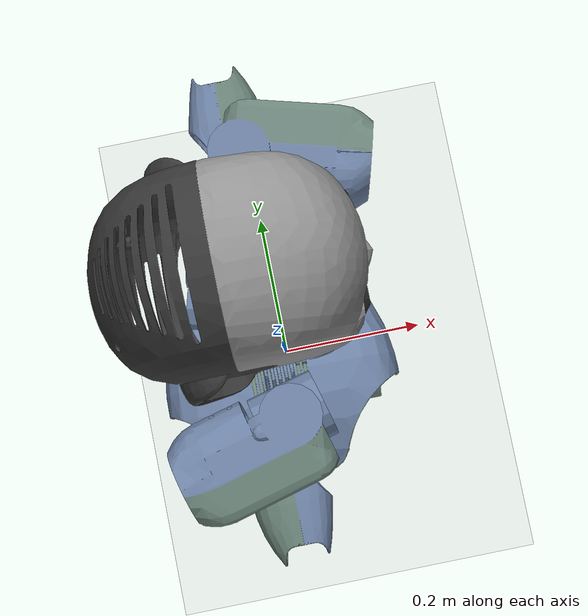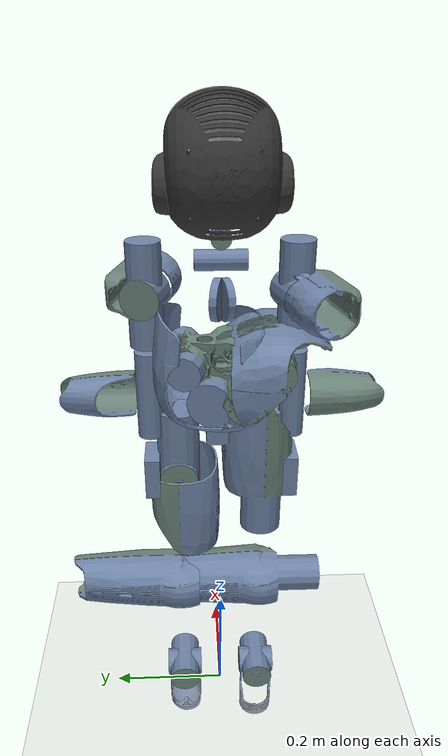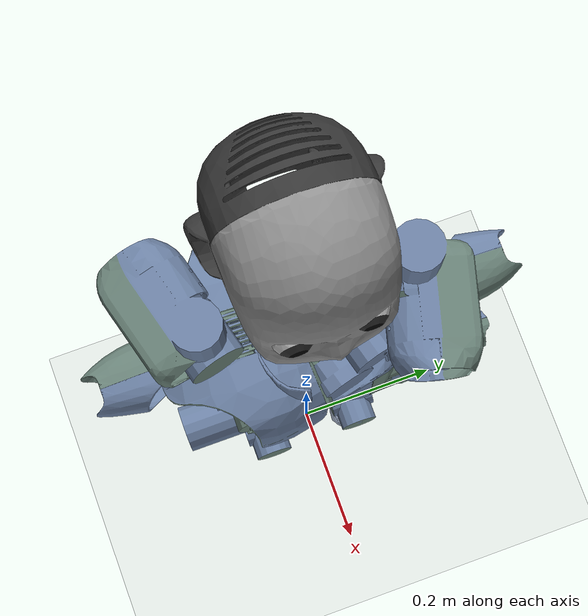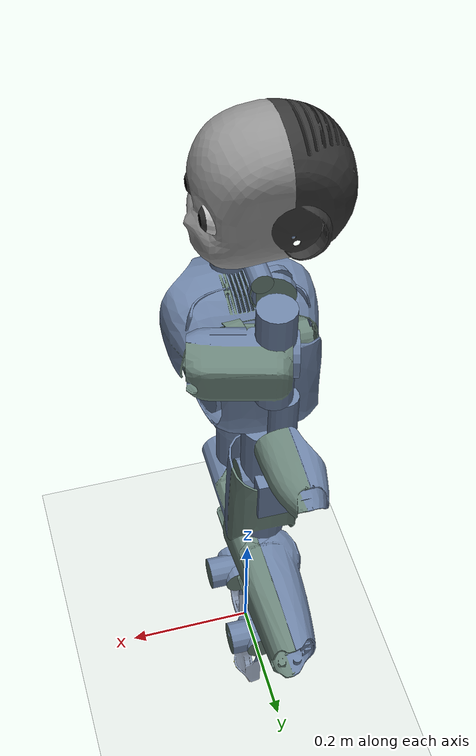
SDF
<?xml version="1.0" ?>
<!--
    Copyright (c) 2019 Horizon Robotics. All Rights Reserved.                            -->
<sdf version="1.5">
  <world name="default">
    <physics type="ode">
      <max_step_size>0.001</max_step_size>
      <real_time_factor>1</real_time_factor>
      <real_time_update_rate>0</real_time_update_rate>
    </physics>
    <!-- Ground -->
    <include>
      <uri>model://texture_ground_plane</uri>
    </include>
    <!-- A global light source -->
    <include>
      <uri>model://sun</uri>
    </include>
    <!-- Agent -->
    <model name='icub'>
      <include>
        <uri>model://icub</uri>
      </include>
    </model>
  </world>
</sdf>

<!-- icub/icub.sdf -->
<sdf version='1.5'>
  <model name='iCub'>
    <pose>0 0 0.6 0 0 3.14</pose>
    <link name='root_link'>
      <pose>0 0 0 0 -0 0</pose>
      <inertial>
        <pose>0 0 0 0 -0 0</pose>
        <mass>1.0</mass>
        <inertia>
          <ixx>0.01</ixx>
          <ixy>0</ixy>
          <ixz>0</ixz>
          <iyy>0.01</iyy>
          <iyz>0</iyz>
          <izz>0.01</izz>
        </inertia>
      </inertial>
      <collision name='root_link_collision'>
        <pose>0 0 0 0 -0 0</pose>
        <geometry>
          <mesh>
            <scale>1 1 1</scale>
            <uri>model://icub/meshes/collision/icub_simple_collision_root_link.dae</uri>
          </mesh>
        </geometry>
      </collision>
      <visual name='root_link_visual'>
        <pose>0 0 0 0 -0 0</pose>
        <geometry>
          <mesh>
            <scale>1 1 1</scale>
            <uri>model://icub/meshes/visual/icub_root_link.dae</uri>
          </mesh>
        </geometry>
      </visual>
    </link>

    <link name='torso_1'>
      <pose>0 0 0 3.14159 -1.57079 -2.65359e-06</pose>
      <inertial>
        <pose>0 0 0 0 -0 0</pose>
        <mass>0.1</mass>
        <inertia>
          <ixx>0.01</ixx>
          <ixy>-4.263e-05</ixy>
          <ixz>-3.889e-08</ixz>
          <iyy>0.01</iyy>
          <iyz>0</iyz>
          <izz>0.01</izz>
        </inertia>
      </inertial>
      <collision name='torso_1_collision'>
        <pose>0 0 0 -1.5708 5.10314e-12 1.11022e-16</pose>
        <geometry>
          <mesh>
            <scale>1 1 1</scale>
            <uri>model://icub/meshes/collision/icub_simple_collision_lap_belt_1.dae</uri>
          </mesh>
        </geometry>
      </collision>
      <visual name='torso_1_visual'>
        <pose>0 0 0 -1.5708 5.10314e-12 1.11022e-16</pose>
        <geometry>
          <mesh>
            <scale>1 1 1</scale>
            <uri>model://icub/meshes/visual/icub_lap_belt_1.dae</uri>
          </mesh>
        </geometry>
      </visual>
    </link>
    <joint name='torso_pitch' type='revolute'>
      <child>torso_1</child>
      <parent>root_link</parent>
      <axis>
        <xyz>-2.65359e-06 -1 -1.05879e-22</xyz>
        <limit>
          <lower>-0.383972</lower>
          <upper>1.46608</upper>
          <effort>320</effort>
          <velocity>100</velocity>
        </limit>
        <dynamics>
          <damping>1</damping>
          <friction>0</friction>
          <spring_reference>0</spring_reference>
          <spring_stiffness>0</spring_stiffness>
        </dynamics>
        <use_parent_model_frame>1</use_parent_model_frame>
      </axis>
    </joint>
    <link name='torso_2'>
      <pose>1.17543e-07 -3.1191e-13 0.032 -3.14159 3.67321e-06 1.57079</pose>
      <inertial>
        <pose>0 0 0 0 -0 0</pose>
        <mass>0.1</mass>
        <inertia>
          <ixx>0.01</ixx>
          <ixy>-1.923e-06</ixy>
          <ixz>5.095e-05</ixz>
          <iyy>0.01</iyy>
          <iyz>-3.849e-07</iyz>
          <izz>0.01</izz>
        </inertia>
      </inertial>
    </link>
    <joint name='torso_roll' type='revolute'>
      <child>torso_2</child>
      <parent>torso_1</parent>
      <axis>
        <xyz>1 -2.6536e-06 -7.34641e-06</xyz>
        <limit>
          <lower>-0.680678</lower>
          <upper>0.680678</upper>
          <effort>160</effort>
          <velocity>100</velocity>
        </limit>
        <dynamics>
          <damping>1</damping>
          <friction>0</friction>
          <spring_reference>0</spring_reference>
          <spring_stiffness>0</spring_stiffness>
        </dynamics>
        <use_parent_model_frame>1</use_parent_model_frame>
      </axis>
    </joint>
    <link name='chest'>
      <pose>-0.00549988 1.45945e-08 0.032 1.5708 -7.34642e-06 -3.14159</pose>
      <inertial>
        <pose>0.00222898 0.075 -1.18362e-17 0 -0 0</pose>
        <mass>1.2</mass>
        <inertia>
          <ixx>0.07472</ixx>
          <ixy>-3.6e-06</ixy>
          <ixz>-4.705e-05</ixz>
          <iyy>0.08145</iyy>
          <iyz>0.004567</iyz>
          <izz>0.01306</izz>
        </inertia>
      </inertial>
      <collision name='chest_collision'>
        <pose>-0.0055 -6.93889e-18 -3.55271e-18 -1.10717 -1.57079 2.67798</pose>
        <geometry>
          <mesh>
            <scale>1 1 1</scale>
            <uri>model://icub/meshes/collision/icub_simple_collision_chest.dae</uri>
          </mesh>
        </geometry>
      </collision>
      <visual name='chest_visual'>
        <pose>-0.0055 -6.93889e-18 -3.55271e-18 -1.10717 -1.57079 2.67798</pose>
        <geometry>
          <mesh>
            <scale>1 1 1</scale>
            <uri>model://icub/meshes/visual/icub_chest.dae</uri>
          </mesh>
        </geometry>
      </visual>
    </link>
    <joint name='torso_yaw' type='revolute'>
      <child>chest</child>
      <parent>torso_2</parent>
      <axis>
        <xyz>-7.34642e-06 1.94942e-11 -1</xyz>
        <limit>
          <lower>-1.02974</lower>
          <upper>1.02974</upper>
          <effort>80</effort>
          <velocity>100</velocity>
        </limit>
        <dynamics>
          <damping>1</damping>
          <friction>0</friction>
          <spring_reference>0</spring_reference>
          <spring_stiffness>0</spring_stiffness>
        </dynamics>
        <use_parent_model_frame>1</use_parent_model_frame>
      </axis>
    </joint>
    <link name='l_shoulder_1'>
      <pose>-0.0107487 -0.11026 0.1753 -0.261794 -1.57079 -1.42917e-06</pose>
      <inertial>
        <pose>-5e-06 0.0187 -0.00119 0 -0 0</pose>
        <mass>0.189</mass>
        <inertia>
          <ixx>0.01</ixx>
          <ixy>9e-09</ixy>
          <ixz>0</ixz>
          <iyy>0.01</iyy>
          <iyz>-1.7e-08</iyz>
          <izz>0.01</izz>
        </inertia>
      </inertial>
      <collision name='l_shoulder_1_collision'>
        <pose>3.08642e-14 0.109285 -0.00521101 -0.301063 1.57079 -1.87186</pose>
        <geometry>
          <mesh>
            <scale>1 1 1</scale>
            <uri>model://icub/meshes/collision/icub_simple_collision_l_shoulder_1.dae</uri>
          </mesh>
        </geometry>
      </collision>
      <visual name='l_shoulder_1_visual'>
        <pose>3.08642e-14 0.109285 -0.00521101 -0.301063 1.57079 -1.87186</pose>
        <geometry>
          <mesh>
            <scale>1 1 1</scale>
            <uri>model://icub/meshes/visual/icub_l_shoulder_1.dae</uri>
          </mesh>
        </geometry>
      </visual>
    </link>
    <joint name='l_shoulder_pitch' type='revolute'>
      <child>l_shoulder_1</child>
      <parent>chest</parent>
      <axis>
        <xyz>-0.258815 -0.965927 2.85203e-06</xyz>
        <limit>
          <lower>-1.65806</lower>
          <upper>0.0872665</upper>
          <effort>40</effort>
          <velocity>100</velocity>
        </limit>
        <dynamics>
          <damping>1</damping>
          <friction>0</friction>
          <spring_reference>0</spring_reference>
          <spring_stiffness>0</spring_stiffness>
        </dynamics>
        <use_parent_model_frame>1</use_parent_model_frame>
      </axis>
    </joint>
    <link name='l_shoulder_2'>
      <pose>-0.0107487 -0.11026 0.1753 3.14159 8.21174e-07 -1.83259</pose>
      <inertial>
        <pose>9.4e-05 -0.00627 0.0166 0 -0 0</pose>
        <mass>0.179</mass>
        <inertia>
          <ixx>0.01</ixx>
          <ixy>4.66e-07</ixy>
          <ixz>3.65e-07</ixz>
          <iyy>0.01</iyy>
          <iyz>-2.0524e-05</iyz>
          <izz>0.01</izz>
        </inertia>
      </inertial>
      <collision name='l_shoulder_2_collision'>
        <pose>-0.00154529 -0.00521101 -1.11181e-12 -2.14033 1.57079 -0.569533</pose>
        <geometry>
          <mesh>
            <scale>1 1 1</scale>
            <uri>model://icub/meshes/collision/icub_simple_collision_l_shoulder_2.dae</uri>
          </mesh>
        </geometry>
      </collision>
      <visual name='l_shoulder_2_visual'>
        <pose>-0.00154529 -0.00521101 -1.11181e-12 -2.14033 1.57079 -0.569533</pose>
        <geometry>
          <mesh>
            <scale>1 1 1</scale>
            <uri>model://icub/meshes/visual/icub_l_shoulder_2.dae</uri>
          </mesh>
        </geometry>
      </visual>
    </link>
    <joint name='l_shoulder_roll' type='revolute'>
      <child>l_shoulder_2</child>
      <parent>l_shoulder_1</parent>
      <axis>
        <xyz>-0.965927 0.258815 6.97095e-06</xyz>
        <limit>
          <lower>0</lower>
          <upper>2.80649</upper>
          <effort>40</effort>
          <velocity>100</velocity>
        </limit>
        <dynamics>
          <damping>1</damping>
          <friction>0</friction>
          <spring_reference>0</spring_reference>
          <spring_stiffness>0</spring_stiffness>
        </dynamics>
        <use_parent_model_frame>1</use_parent_model_frame>
      </axis>
    </joint>
    <link name='l_shoulder_3'>
      <pose>-0.0107487 -0.11026 0.1753 3.14159 -6.5209e-06 -3.14159</pose>
      <inertial>
        <pose>0.00559398 9.77357e-05 0.0501346 0 -0 0</pose>
        <mass>0.156157</mass>
        <inertia>
          <ixx>0.01</ixx>
          <ixy>-5.662e-08</ixy>
          <ixz>-4.3618e-06</ixz>
          <iyy>0.01</iyy>
          <iyz>-7.42844e-07</iyz>
          <izz>0.01</izz>
        </inertia>
      </inertial>
    </link>
    <joint name='l_shoulder_yaw' type='revolute'>
      <child>l_shoulder_3</child>
      <parent>l_shoulder_2</parent>
      <axis>
        <xyz>-6.5209e-06 2.59738e-06 -1</xyz>
        <limit>
          <lower>-0.645772</lower>
          <upper>1.74533</upper>
          <effort>34</effort>
          <velocity>100</velocity>
        </limit>
        <dynamics>
          <damping>1</damping>
          <friction>0</friction>
          <spring_reference>0</spring_reference>
          <spring_stiffness>0</spring_stiffness>
        </dynamics>
        <use_parent_model_frame>1</use_parent_model_frame>
      </axis>
    </joint>
    <link name='l_upper_arm'>
      <pose>-0.0257492 -0.11026 0.1073 3.14159 -6.5209e-06 -3.14159</pose>
      <inertial>
        <pose>-0.000156 -9.87e-05 0.0298 0 -0 0</pose>
        <mass>0.727843</mass>
        <inertia>
          <ixx>0.01</ixx>
          <ixy>-1.08e-06</ixy>
          <ixz>-2.29e-06</ixz>
          <iyy>0.01</iyy>
          <iyz>3.57e-06</iyz>
          <izz>0.01</izz>
        </inertia>
      </inertial>
      <collision name='l_upper_arm_collision'>
        <pose>-0.0204334 0.000143922 -0.068 1.15274e-11 4.92958e-12 -1.309</pose>
        <geometry>
          <mesh>
            <scale>1 1 1</scale>
            <uri>model://icub/meshes/collision/icub_simple_collision_l_arm.dae</uri>
          </mesh>
        </geometry>
      </collision>
      <visual name='l_upper_arm_visual'>
        <pose>-0.0204334 0.000143922 -0.068 1.15274e-11 4.92958e-12 -1.309</pose>
        <geometry>
          <mesh>
            <scale>1 1 1</scale>
            <uri>model://icub/meshes/visual/icub_l_arm.dae</uri>
          </mesh>
        </geometry>
      </visual>
    </link>
    <joint name='l_arm_fixed_joint' type='fixed'>
      <child>l_upper_arm</child>
      <parent>l_shoulder_3</parent>
    </joint>
    <link name='l_elbow_1'>
      <pose>-0.0257497 -0.11026 0.0230202 3.14159 -6.5209e-06 -3.14159</pose>
      <inertial>
        <pose>-0.0013 0.00371 -0.00105 0 -0 0</pose>
        <mass>0.1</mass>
        <inertia>
          <ixx>0.01</ixx>
          <ixy>-5.15e-07</ixy>
          <ixz>-4.08e-07</ixz>
          <iyy>0.01</iyy>
          <iyz>-3.71e-07</iyz>
          <izz>0.01</izz>
        </inertia>
      </inertial>
    </link>
    <joint name='l_elbow' type='revolute'>
      <child>l_elbow_1</child>
      <parent>l_upper_arm</parent>
      <axis>
        <xyz>-1.01957e-06 1 2.59739e-06</xyz>
        <limit>
          <lower>0.0959931</lower>
          <upper>1.85005</upper>
          <effort>20</effort>
          <velocity>100</velocity>
        </limit>
        <dynamics>
          <damping>1</damping>
          <friction>0</friction>
          <spring_reference>0</spring_reference>
          <spring_stiffness>0</spring_stiffness>
        </dynamics>
        <use_parent_model_frame>1</use_parent_model_frame>
      </axis>
    </joint>
    <link name='l_forearm'>
      <pose>-0.0107497 -0.11026 0.0230201 -1.5708 2.59741e-06 -1.57079</pose>
      <inertial>
        <pose>0.000347 0.066 0.00476 0 -0 0</pose>
        <mass>0.525</mass>
        <inertia>
          <ixx>0.01</ixx>
          <ixy>4.337e-06</ixy>
          <ixz>2.39e-07</ixz>
          <iyy>0.01</iyy>
          <iyz>1.9381e-05</iyz>
          <izz>0.01</izz>
        </inertia>
      </inertial>
      <collision name='l_forearm_collision'>
        <pose>-0.000143922 -1.25974e-12 0.0204334 -2.66395 1.57079 -1.09315</pose>
        <geometry>
          <mesh>
            <scale>1 1 1</scale>
            <uri>model://icub/meshes/collision/icub_simple_collision_l_forearm.dae</uri>
          </mesh>
        </geometry>
      </collision>
      <visual name='l_forearm_visual'>
        <pose>-0.000143922 -1.25974e-12 0.0204334 -2.66395 1.57079 -1.09315</pose>
        <geometry>
          <mesh>
            <scale>1 1 1</scale>
            <uri>model://icub/meshes/visual/icub_l_forearm.dae</uri>
          </mesh>
        </geometry>
      </visual>
    </link>
    <joint name='l_wrist_prosup' type='revolute'>
      <child>l_forearm</child>
      <parent>l_elbow_1</parent>
      <axis>
        <xyz>-2.8477e-06 2.5974e-06 -1</xyz>
        <limit>
          <lower>-0.872665</lower>
          <upper>0.872665</upper>
          <effort>0.45</effort>
          <velocity>100</velocity>
        </limit>
        <dynamics>
          <damping>1</damping>
          <friction>0</friction>
          <spring_reference>0</spring_reference>
          <spring_stiffness>0</spring_stiffness>
        </dynamics>
        <use_parent_model_frame>1</use_parent_model_frame>
      </axis>
    </joint>
    <link name='l_wrist_1'>
      <pose>-0.0107501 -0.110259 -0.11428 -2.7153 1.57079 1.99709</pose>
      <inertial>
        <pose>0 0 0 0 -0 0</pose>
        <mass>0.1</mass>
        <inertia>
          <ixx>0.01</ixx>
          <ixy>0</ixy>
          <ixz>0</ixz>
          <iyy>0.01</iyy>
          <iyz>0</iyz>
          <izz>0.01</izz>
        </inertia>
      </inertial>
    </link>
    <joint name='l_wrist_pitch' type='revolute'>
      <child>l_wrist_1</child>
      <parent>l_forearm</parent>
      <axis>
        <xyz>1 1.01958e-06 -2.84771e-06</xyz>
        <limit>
          <lower>-1.13446</lower>
          <upper>0.174533</upper>
          <effort>0.65</effort>
          <velocity>100</velocity>
        </limit>
        <dynamics>
          <damping>1</damping>
          <friction>0</friction>
          <spring_reference>0</spring_reference>
          <spring_stiffness>0</spring_stiffness>
        </dynamics>
        <use_parent_model_frame>1</use_parent_model_frame>
      </axis>
    </joint>
    <link name='l_hand'>
      <pose>-0.0107501 -0.110259 -0.11428 -2.7153 1.57079 1.99709</pose>
      <inertial>
        <pose>0.07023 -0.00805 -0.007 0 -0 0</pose>
        <mass>1.05</mass>
        <inertia>
          <ixx>0.01</ixx>
          <ixy>1.278e-05</ixy>
          <ixz>4.823e-06</ixz>
          <iyy>0.01</iyy>
          <iyz>-1.8188e-05</iyz>
          <izz>0.01</izz>
        </inertia>
      </inertial>
      <collision name='l_hand_collision'>
        <pose>-1.25973e-12 0.0204334 -0.000143922 5.10271e-12 -2.64186e-12 1.49622e-11</pose>
        <geometry>
          <mesh>
            <scale>1 1 1</scale>
            <uri>model://icub/meshes/collision/icub_simple_collision_l_hand.dae</uri>
          </mesh>
        </geometry>
      </collision>
      <visual name='l_hand_visual'>
        <pose>-1.25973e-12 0.0204334 -0.000143922 5.10271e-12 -2.64186e-12 1.49622e-11</pose>
        <geometry>
          <mesh>
            <scale>1 1 1</scale>
            <uri>model://icub/meshes/visual/icub_l_hand.dae</uri>
          </mesh>
        </geometry>
      </visual>
    </link>
    <joint name='l_wrist_yaw' type='revolute'>
      <child>l_hand</child>
      <parent>l_wrist_1</parent>
      <axis>
        <xyz>1.01956e-06 -1 -6.27061e-06</xyz>
        <limit>
          <lower>-0.436332</lower>
          <upper>0.436332</upper>
          <effort>0.65</effort>
          <velocity>100</velocity>
        </limit>
        <dynamics>
          <damping>1</damping>
          <friction>0</friction>
          <spring_reference>0</spring_reference>
          <spring_stiffness>0</spring_stiffness>
        </dynamics>
        <use_parent_model_frame>1</use_parent_model_frame>
      </axis>
    </joint>
    <link name='neck_1'>
      <pose>-0.00780846 1.22355e-08 0.2253 6.12199e-06 -1.57079 -1.42918e-06</pose>
      <inertial>
        <pose>0 0 0 0 -0 0</pose>
        <mass>0.1</mass>
        <inertia>
          <ixx>0.01</ixx>
          <ixy>0</ixy>
          <ixz>0</ixz>
          <iyy>0.01</iyy>
          <iyz>0</iyz>
          <izz>0.01</izz>
        </inertia>
      </inertial>
      <collision name='neck_1_collision'>
        <pose>-5.55112e-17 9.62889e-13 -0.0055 3.14159 -1.57079 1.5708</pose>
        <geometry>
          <mesh>
            <scale>1 1 1</scale>
            <uri>model://icub/meshes/collision/icub_simple_collision_neck_1.dae</uri>
          </mesh>
        </geometry>
      </collision>
      <visual name='neck_1_visual'>
        <pose>-5.55112e-17 9.62889e-13 -0.0055 3.14159 -1.57079 1.5708</pose>
        <geometry>
          <mesh>
            <scale>1 1 1</scale>
            <uri>model://icub/meshes/visual/icub_neck_1.dae</uri>
          </mesh>
        </geometry>
      </visual>
    </link>
    <joint name='neck_pitch' type='revolute'>
      <child>neck_1</child>
      <parent>chest</parent>
      <axis>
        <xyz>-4.69281e-06 1 6.74621e-11</xyz>
        <limit>
          <lower>-0.523599</lower>
          <upper>0.383972</upper>
          <effort>20</effort>
          <velocity>100</velocity>
        </limit>
        <dynamics>
          <damping>1</damping>
          <friction>0</friction>
          <spring_reference>0</spring_reference>
          <spring_stiffness>0</spring_stiffness>
        </dynamics>
        <use_parent_model_frame>1</use_parent_model_frame>
      </axis>
      <physics>
        <ode>
          <implicit_spring_damper>1</implicit_spring_damper>
          <cfm_damping>1</cfm_damping>
          <limit>
            <cfm>0</cfm>
            <erp>0.2</erp>
          </limit>
        </ode>
      </physics>
    </joint>
    <link name='neck_2'>
      <pose>-0.00780836 1.22353e-08 0.2348 -1.46928e-05 3.67327e-06 -1.57079</pose>
      <inertial>
        <pose>0 0 0 0 -0 0</pose>
        <mass>0.1</mass>
        <inertia>
          <ixx>0.01</ixx>
          <ixy>0</ixy>
          <ixz>0</ixz>
          <iyy>0.01</iyy>
          <iyz>0</iyz>
          <izz>0.01</izz>
        </inertia>
      </inertial>
      <collision name='neck_2_collision'>
        <pose>-9.62885e-13 0.0055 0.0235 -3.14157 -1.57079 -1.57082</pose>
        <geometry>
          <mesh>
            <scale>1 1 1</scale>
            <uri>model://icub/meshes/collision/icub_simple_collision_neck_2.dae</uri>
          </mesh>
        </geometry>
      </collision>
      <visual name='neck_2_visual'>
        <pose>-9.62885e-13 0.0055 0.0235 -3.14157 -1.57079 -1.57082</pose>
        <geometry>
          <mesh>
            <scale>1 1 1</scale>
            <uri>model://icub/meshes/visual/icub_neck_2.dae</uri>
          </mesh>
        </geometry>
      </visual>
    </link>
    <joint name='neck_roll' type='revolute'>
      <child>neck_2</child>
      <parent>neck_1</parent>
      <axis>
        <xyz>-1 -4.69282e-06 1.46928e-05</xyz>
        <limit>
          <lower>-0.349066</lower>
          <upper>0.349066</upper>
          <effort>20</effort>
          <velocity>100</velocity>
        </limit>
        <dynamics>
          <damping>1</damping>
          <friction>0</friction>
          <spring_reference>0</spring_reference>
          <spring_stiffness>0</spring_stiffness>
        </dynamics>
        <use_parent_model_frame>1</use_parent_model_frame>
      </axis>
      <physics>
        <ode>
          <implicit_spring_damper>1</implicit_spring_damper>
          <cfm_damping>1</cfm_damping>
          <limit>
            <cfm>0</cfm>
            <erp>0.2</erp>
          </limit>
        </ode>
      </physics>
    </joint>
    <link name='head'>
      <pose>-0.00780836 1.22353e-08 0.2348 -1.5708 1.46928e-05 8.36603e-06</pose>
      <inertial>
        <pose>0.0185 -0.1108 6.78454e-18 0 -0 0</pose>
        <mass>0.5</mass>
        <inertia>
          <ixx>0.01</ixx>
          <ixy>0</ixy>
          <ixz>0</ixz>
          <iyy>0.01</iyy>
          <iyz>0</iyz>
          <izz>0.01</izz>
        </inertia>
      </inertial>
      <collision name='head_collision'>
        <pose>0.0045 -0.0235 9.42472e-13 -1.32582 1.57079 -2.89662</pose>
        <geometry>
          <mesh>
            <scale>1 1 1</scale>
            <uri>model://icub/meshes/collision/icub_simple_collision_head.dae</uri>
          </mesh>
        </geometry>
      </collision>
      <visual name='head_visual'>

       <pose>0.0045 -0.0235 9.42472e-13 -2.89662 1.57079 -2.89662</pose>
        <geometry>
          <mesh>
            <scale>1 1 1</scale>
            <uri>model://icub/meshes/visual/icub_head_without_eyes.dae</uri>
          </mesh>
        </geometry>
      </visual>
    </link>
    <joint name='neck_yaw' type='revolute'>
      <child>head</child>
      <parent>neck_2</parent>
      <axis>
        <xyz>1.46928e-05 1.48834e-12 1</xyz>
        <limit>
          <lower>-0.767945</lower>
          <upper>0.767945</upper>
          <effort>20</effort>
          <velocity>100</velocity>
        </limit>
        <dynamics>
          <damping>1</damping>
          <friction>0</friction>
          <spring_reference>0</spring_reference>
          <spring_stiffness>0</spring_stiffness>
        </dynamics>
        <use_parent_model_frame>1</use_parent_model_frame>
      </axis>
      <physics>
        <ode>
          <implicit_spring_damper>1</implicit_spring_damper>
          <cfm_damping>1</cfm_damping>
          <limit>
            <cfm>0</cfm>
            <erp>0.2</erp>
          </limit>
        </ode>
      </physics>
    </joint>

    <link name='eyes_tilt_link'>
      <pose>-62.81e-03 0e-03 340.8e-03 1.57079 0 0</pose>
      <inertial>
        <pose>0.0 0.0 0.0 0 0 0</pose>
        <mass>0.01</mass>
        <inertia>
          <ixx>0.001</ixx>
          <ixy>0</ixy>
          <ixz>0</ixz>
          <iyy>0.001</iyy>
          <iyz>0</iyz>
          <izz>0.001</izz>
        </inertia>
      </inertial>
    </link>

    <link name='left_eye_link'>
      <pose>-62.81e-03 -34e-03 340.8e-03 -3.14159 0 0</pose>
      <inertial>
        <pose>0.0 0.0 0.0 0.0 0.0 0.0</pose>
        <mass>0.01</mass>
        <inertia>
          <ixx>0.001</ixx>
          <ixy>0</ixy>
          <ixz>0</ixz>
          <iyy>0.001</iyy>
          <iyz>0</iyz>
          <izz>0.001</izz>
        </inertia>
      </inertial>
       <visual name='left_eye_visual'>
         <pose>0.055 0.033 -0.14 0 0 0</pose>
        <geometry>
             <mesh>
            <scale>1 1 1</scale>
            <uri>model://icub/meshes/visual/icub_eye.dae</uri>
          </mesh>
        </geometry>
      </visual>
    </link>

    <link name='right_eye_link'>
      <pose> -62.81e-03 34e-03 340.8e-03 -3.14159 0 0</pose>
      <inertial>
        <pose>0 0 0 0 0 0</pose>
        <mass>0.01</mass>
        <inertia>
          <ixx>0.001</ixx>
          <ixy>0</ixy>
          <ixz>0</ixz>
          <iyy>0.001</iyy>
          <iyz>0</iyz>
          <izz>0.001</izz>
        </inertia>
      </inertial>
      <visual name='right_eye_visual'>
        <pose>0.055 0.033 -0.14 0 0 0</pose>
        <geometry>
            <mesh>
            <scale>1 1 1</scale>
            <uri>model://icub/meshes/visual/icub_eye.dae</uri>
          </mesh>
        </geometry>
      </visual>
    </link>

    <joint name='eyes_tilt' type='revolute'>
      <child>eyes_tilt_link</child>
      <parent>head</parent>
      <axis>
        <xyz>0.0 1.0 0.0</xyz>
        <limit>
          <lower>-1.5708</lower>
          <upper>1.5708</upper>
          <effort>5</effort>
          <velocity>100</velocity>
        </limit>
        <dynamics>
          <damping>1</damping>
          <friction>0</friction>
          <spring_reference>0</spring_reference>
          <spring_stiffness>0</spring_stiffness>
        </dynamics>
        <use_parent_model_frame>1</use_parent_model_frame>
      </axis>
      <physics>
        <ode>
          <implicit_spring_damper>1</implicit_spring_damper>
          <cfm_damping>1</cfm_damping>
          <limit>
            <cfm>0</cfm>
            <erp>0.2</erp>
          </limit>
        </ode>
      </physics>
    </joint>

    <joint name='left_eye' type='revolute'>
      <child>left_eye_link</child>
      <parent>eyes_tilt_link</parent>
      <axis>
        <xyz>0.0 0.0 1.0</xyz>
        <limit>
          <lower>-1.5708</lower>
          <upper>1.5708</upper>
          <effort>5</effort>
          <velocity>100</velocity>
        </limit>
        <dynamics>
          <damping>1</damping>
          <friction>0</friction>
          <spring_reference>0</spring_reference>
          <spring_stiffness>0</spring_stiffness>
        </dynamics>
        <use_parent_model_frame>1</use_parent_model_frame>
      </axis>
      <physics>
        <ode>
          <implicit_spring_damper>1</implicit_spring_damper>
          <cfm_damping>1</cfm_damping>
          <limit>
            <cfm>0</cfm>
            <erp>0.2</erp>
          </limit>
        </ode>
      </physics>
    </joint>

    <joint name='right_eye' type='revolute'>
      <child>right_eye_link</child>
      <parent>eyes_tilt_link</parent>
      <axis>
        <xyz>0.0 0.0 1.0</xyz>
        <limit>
          <lower>-1.5708</lower>
          <upper>1.5708</upper>
          <effort>5</effort>
          <velocity>100</velocity>
        </limit>
        <dynamics>
          <damping>1</damping>
          <friction>0</friction>
          <spring_reference>0</spring_reference>
          <spring_stiffness>0</spring_stiffness>
        </dynamics>
        <use_parent_model_frame>1</use_parent_model_frame>
      </axis>
      <physics>
        <ode>
          <implicit_spring_damper>1</implicit_spring_damper>
          <cfm_damping>1</cfm_damping>
          <limit>
            <cfm>0</cfm>
            <erp>0.2</erp>
          </limit>
        </ode>
      </physics>
    </joint>

    <link name='r_shoulder_1'>
      <pose>-0.0107489 0.11026 0.1753 -2.87979 -1.57079 -1.42916e-06</pose>
      <inertial>
        <pose>5e-06 0.0187 0.00119 0 -0 0</pose>
        <mass>0.189</mass>
        <inertia>
          <ixx>0.01</ixx>
          <ixy>2.1e-08</ixy>
          <ixz>-1e-09</ixz>
          <iyy>0.01</iyy>
          <iyz>4.22e-06</iyz>
          <izz>0.01</izz>
        </inertia>
      </inertial>
      <collision name='r_shoulder_1_collision'>
        <pose>-3.08642e-14 0.109285 0.00521101 3.06003 1.57079 -1.65235</pose>
        <geometry>
          <mesh>
            <scale>1 1 1</scale>
            <uri>model://icub/meshes/collision/icub_simple_collision_r_shoulder_1.dae</uri>
          </mesh>
        </geometry>
      </collision>
      <visual name='r_shoulder_1_visual'>
        <pose>-3.08642e-14 0.109285 0.00521101 3.06003 1.57079 -1.65235</pose>
        <geometry>
          <mesh>
            <scale>1 1 1</scale>
            <uri>model://icub/meshes/visual/icub_r_shoulder_1.dae</uri>
          </mesh>
        </geometry>
      </visual>
    </link>
    <joint name='r_shoulder_pitch' type='revolute'>
      <child>r_shoulder_1</child>
      <parent>chest</parent>
      <axis>
        <xyz>0.258817 -0.965926 -2.85208e-06</xyz>
        <limit>
          <lower>-1.65806</lower>
          <upper>0.0872665</upper>
          <effort>40</effort>
          <velocity>100</velocity>
        </limit>
        <dynamics>
          <damping>1</damping>
          <friction>0</friction>
          <spring_reference>0</spring_reference>
          <spring_stiffness>0</spring_stiffness>
        </dynamics>
        <use_parent_model_frame>1</use_parent_model_frame>
      </axis>
    </joint>
    <link name='r_shoulder_2'>
      <pose>-0.0107489 0.11026 0.1753 6.97094e-06 8.21122e-07 1.83259</pose>
      <inertial>
        <pose>-9.4e-05 -0.00627 -0.0166 0 -0 0</pose>
        <mass>0.179</mass>
        <inertia>
          <ixx>0.01</ixx>
          <ixy>-4.53e-07</ixy>
          <ixz>2.03e-07</ixz>
          <iyy>0.01</iyy>
          <iyz>2.07e-05</iyz>
          <izz>0.01</izz>
        </inertia>
      </inertial>
      <collision name='r_shoulder_2_collision'>
        <pose>-0.00154529 -0.00521101 -1.11181e-12 -1.00125 -1.57079 2.57205</pose>
        <geometry>
          <mesh>
            <scale>1 1 1</scale>
            <uri>model://icub/meshes/collision/icub_simple_collision_r_shoulder_2.dae</uri>
          </mesh>
        </geometry>
      </collision>
      <visual name='r_shoulder_2_visual'>
        <pose>-0.00154529 -0.00521101 -1.11181e-12 -1.00125 -1.57079 2.57205</pose>
        <geometry>
          <mesh>
            <scale>1 1 1</scale>
            <uri>model://icub/meshes/visual/icub_r_shoulder_2.dae</uri>
          </mesh>
        </geometry>
      </visual>
    </link>
    <joint name='r_shoulder_roll' type='revolute'>
      <child>r_shoulder_2</child>
      <parent>r_shoulder_1</parent>
      <axis>
        <xyz>0.965926 0.258817 -6.97094e-06</xyz>
        <limit>
          <lower>0</lower>
          <upper>2.80649</upper>
          <effort>40</effort>
          <velocity>100</velocity>
        </limit>
        <dynamics>
          <damping>1</damping>
          <friction>0</friction>
          <spring_reference>0</spring_reference>
          <spring_stiffness>0</spring_stiffness>
        </dynamics>
        <use_parent_model_frame>1</use_parent_model_frame>
      </axis>
    </joint>
    <link name='r_shoulder_3'>
      <pose>-0.0107489 0.11026 0.1753 3.14159 -6.5209e-06 -3.14159</pose>
      <inertial>
        <pose>0.00553932 -2.47652e-05 0.0493895 0 -0 0</pose>
        <mass>0.155</mass>
        <inertia>
          <ixx>0.01</ixx>
          <ixy>3.56977e-07</ixy>
          <ixz>-3.95372e-06</ixz>
          <iyy>0.01</iyy>
          <iyz>-6.5128e-06</iyz>
          <izz>0.01</izz>
        </inertia>
      </inertial>
    </link>
    <joint name='r_shoulder_yaw' type='revolute'>
      <child>r_shoulder_3</child>
      <parent>r_shoulder_2</parent>
      <axis>
        <xyz>6.5209e-06 -5.62481e-08 1</xyz>
        <limit>
          <lower>-0.645772</lower>
          <upper>1.74533</upper>
          <effort>34</effort>
          <velocity>100</velocity>
        </limit>
        <dynamics>
          <damping>1</damping>
          <friction>0</friction>
          <spring_reference>0</spring_reference>
          <spring_stiffness>0</spring_stiffness>
        </dynamics>
        <use_parent_model_frame>1</use_parent_model_frame>
      </axis>
    </joint>
    <link name='r_upper_arm'>
      <pose>-0.0257494 0.11026 0.1073 3.14159 -6.5209e-06 -3.14159</pose>
      <inertial>
        <pose>-0.00015906 8.28733e-05 0.0298828 0 -0 0</pose>
        <mass>0.728</mass>
        <inertia>
          <ixx>0.01</ixx>
          <ixy>-1.08e-06</ixy>
          <ixz>-2.29e-06</ixz>
          <iyy>0.01</iyy>
          <iyz>3.57e-06</iyz>
          <izz>0.01</izz>
        </inertia>
      </inertial>
      <collision name='r_upper_arm_collision'>
        <pose>-0.0204334 -0.000143922 -0.068 -3.14159 -1.51363e-11 1.309</pose>
        <geometry>
          <mesh>
            <scale>1 1 1</scale>
            <uri>model://icub/meshes/collision/icub_simple_collision_r_arm.dae</uri>
          </mesh>
        </geometry>
      </collision>
      <visual name='r_upper_arm_visual'>
        <pose>-0.0204334 -0.000143922 -0.068 -3.14159 -1.51363e-11 1.309</pose>
        <geometry>
          <mesh>
            <scale>1 1 1</scale>
            <uri>model://icub/meshes/visual/icub_r_arm.dae</uri>
          </mesh>
        </geometry>
      </visual>
    </link>
    <joint name='r_arm_fixed_joint' type='fixed'>
      <child>r_upper_arm</child>
      <parent>r_shoulder_3</parent>
    </joint>
    <link name='r_elbow_1'>
      <pose>-0.0257499 0.11026 0.0230202 -2.59732e-06 6.5209e-06 3.6732e-06</pose>
      <inertial>
        <pose>0.0013 -0.00371 0.00105 0 -0 0</pose>
        <mass>0.1</mass>
        <inertia>
          <ixx>0.01</ixx>
          <ixy>-5.02e-07</ixy>
          <ixz>-3.99e-07</ixz>
          <iyy>0.01</iyy>
          <iyz>-3.71e-07</iyz>
          <izz>0.01</izz>
        </inertia>
      </inertial>
    </link>
    <joint name='r_elbow' type='revolute'>
      <child>r_elbow_1</child>
      <parent>r_upper_arm</parent>
      <axis>
        <xyz>-3.67322e-06 1 -2.59732e-06</xyz>
        <limit>
          <lower>0.0959931</lower>
          <upper>1.85005</upper>
          <effort>20</effort>
          <velocity>100</velocity>
        </limit>
        <dynamics>
          <damping>1</damping>
          <friction>0</friction>
          <spring_reference>0</spring_reference>
          <spring_stiffness>0</spring_stiffness>
        </dynamics>
        <use_parent_model_frame>1</use_parent_model_frame>
      </axis>
    </joint>
    <link name='r_forearm'>
      <pose>-0.0107499 0.11026 0.0230201 1.57079 -2.59734e-06 -1.5708</pose>
      <inertial>
        <pose>-0.000347 -0.066 -0.00476 0 -0 0</pose>
        <mass>0.525</mass>
        <inertia>
          <ixx>0.01</ixx>
          <ixy>5.66e-06</ixy>
          <ixz>1.4e-06</ixz>
          <iyy>0.01</iyy>
          <iyz>1.82e-05</iyz>
          <izz>0.01</izz>
        </inertia>
      </inertial>
      <collision name='r_forearm_collision'>
        <pose>0.000143922 -1.07214e-12 -0.0204334 -1.74165 1.57079 -0.170863</pose>
        <geometry>
          <mesh>
            <scale>1 1 1</scale>
            <uri>model://icub/meshes/collision/icub_simple_collision_r_forearm.dae</uri>
          </mesh>
        </geometry>
      </collision>
      <visual name='r_forearm_visual'>
        <pose>0.000143922 -1.07214e-12 -0.0204334 -1.74165 1.57079 -0.170863</pose>
        <geometry>
          <mesh>
            <scale>1 1 1</scale>
            <uri>model://icub/meshes/visual/icub_r_forearm.dae</uri>
          </mesh>
        </geometry>
      </visual>
    </link>
    <joint name='r_wrist_prosup' type='revolute'>
      <child>r_forearm</child>
      <parent>r_elbow_1</parent>
      <axis>
        <xyz>2.84768e-06 2.59734e-06 1</xyz>
        <limit>
          <lower>-0.872665</lower>
          <upper>0.872665</upper>
          <effort>0.45</effort>
          <velocity>100</velocity>
        </limit>
        <dynamics>
          <damping>1</damping>
          <friction>0</friction>
          <spring_reference>0</spring_reference>
          <spring_stiffness>0</spring_stiffness>
        </dynamics>
        <use_parent_model_frame>1</use_parent_model_frame>
      </axis>
    </joint>
    <link name='r_wrist_1'>
      <pose>-0.0107503 0.11026 -0.11428 0.426292 -1.57079 1.14451</pose>
      <inertial>
        <pose>0 0 0 0 -0 0</pose>
        <mass>0.1</mass>
        <inertia>
          <ixx>0.01</ixx>
          <ixy>0</ixy>
          <ixz>0</ixz>
          <iyy>0.01</iyy>
          <iyz>0</iyz>
          <izz>0.01</izz>
        </inertia>
      </inertial>
    </link>
    <joint name='r_wrist_pitch' type='revolute'>
      <child>r_wrist_1</child>
      <parent>r_forearm</parent>
      <axis>
        <xyz>-1 -3.67321e-06 2.84771e-06</xyz>
        <limit>
          <lower>-1.13446</lower>
          <upper>0.174533</upper>
          <effort>0.65</effort>
          <velocity>100</velocity>
        </limit>
        <dynamics>
          <damping>1</damping>
          <friction>0</friction>
          <spring_reference>0</spring_reference>
          <spring_stiffness>0</spring_stiffness>
        </dynamics>
        <use_parent_model_frame>1</use_parent_model_frame>
      </axis>
    </joint>
    <link name='r_hand'>
      <pose>-0.0107503 0.11026 -0.11428 -0.720145 1.57079 -2.29094</pose>
      <inertial>
        <pose>0.07023 -0.00805 0.007 0 -0 0</pose>
        <mass>1.05</mass>
        <inertia>
          <ixx>0.01</ixx>
          <ixy>1.26e-05</ixy>
          <ixz>-6.08e-06</ixz>
          <iyy>0.01</iyy>
          <iyz>1.76e-05</iyz>
          <izz>0.01</izz>
        </inertia>
      </inertial>
      <collision name='r_hand_collision'>
        <pose>1.0721e-12 0.0204334 0.000143922 1.53098e-11 2.00656e-11 -3.14159</pose>
        <geometry>
          <mesh>
            <scale>1 1 1</scale>
            <uri>model://icub/meshes/collision/icub_simple_collision_r_hand.dae</uri>
          </mesh>
        </geometry>
      </collision>
      <visual name='r_hand_visual'>
        <pose>1.0721e-12 0.0204334 0.000143922 1.53098e-11 2.00656e-11 -3.14159</pose>
        <geometry>
          <mesh>
            <scale>1 1 1</scale>
            <uri>model://icub/meshes/visual/icub_r_hand.dae</uri>
          </mesh>
        </geometry>
      </visual>
    </link>
    <joint name='r_wrist_yaw' type='revolute'>
      <child>r_hand</child>
      <parent>r_wrist_1</parent>
      <axis>
        <xyz>3.67323e-06 -1 6.27054e-06</xyz>
        <limit>
          <lower>-0.436332</lower>
          <upper>0.436332</upper>
          <effort>0.65</effort>
          <velocity>100</velocity>
        </limit>
        <dynamics>
          <damping>1</damping>
          <friction>0</friction>
          <spring_reference>0</spring_reference>
          <spring_stiffness>0</spring_stiffness>
        </dynamics>
        <use_parent_model_frame>1</use_parent_model_frame>
      </axis>
    </joint>

    <include>
        <uri>model://icub/l_leg</uri>
    </include>

    <include>
        <uri>model://icub/r_leg</uri>
    </include>

  </model>
</sdf>

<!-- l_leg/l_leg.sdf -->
<sdf version='1.6'>
    <model name='l_leg'>
        <link name='l_hip_1'>
            <pose>0 -0.0681 -0.1199 2.65359e-06 1.57079 3.14159</pose>
            <inertial>
                <pose>0 -0.0782 0 0 -0 0</pose>
                <mass>0.754</mass>
                <inertia>
                    <ixx>0.01</ixx>
                    <ixy>2.059e-06</ixy>
                    <ixz>1.451e-06</ixz>
                    <iyy>0.01</iyy>
                    <iyz>1.545e-06</iyz>
                    <izz>0.01</izz>
                </inertia>
            </inertial>
            <collision name='l_hip_1_collision'>
                <pose>0 0 0 -0.785403 1.57079 -2.35619</pose>
                <geometry>
                    <mesh>
                        <scale>1 1 1</scale>
                        <uri>model://icub/meshes/collision/icub_simple_collision_l_hip_1.dae</uri>
                    </mesh>
                </geometry>
            </collision>
            <visual name='l_hip_1_visual'>
                <pose>0 0 0 -0.785403 1.57079 -2.35619</pose>
                <geometry>
                    <mesh>
                        <scale>1 1 1</scale>
                        <uri>model://icub/meshes/visual/icub_l_hip_1.dae</uri>
                    </mesh>
                </geometry>
            </visual>
        </link>
        <joint name='l_hip_pitch' type='revolute'>
            <child>l_hip_1</child>
            <parent>root_link</parent>
            <axis>
                <xyz>2.65359e-06 1 -9.74718e-12</xyz>
                <limit>
                    <lower>-0.767945</lower>
                    <upper>2.30383</upper>
                    <effort>320</effort>
                    <velocity>100</velocity>
                </limit>
                <dynamics>
                    <damping>1</damping>
                    <friction>0</friction>
                    <spring_reference>0</spring_reference>
                    <spring_stiffness>0</spring_stiffness>
                </dynamics>
                <use_parent_model_frame>1</use_parent_model_frame>
            </axis>
        </joint>
        <link name='l_hip_2'>
            <pose>0 -0.0681 -0.1199 3.14159 -7.34641e-06 3.14159</pose>
            <inertial>
                <pose>0 0 0.03045 0 -0 0</pose>
                <mass>0.526</mass>
                <inertia>
                    <ixx>0.01</ixx>
                    <ixy>-7.4e-08</ixy>
                    <ixz>1.0835e-05</ixz>
                    <iyy>0.01</iyy>
                    <iyz>-6.2e-08</iyz>
                    <izz>0.01</izz>
                </inertia>
            </inertial>
            <collision name='l_hip_2_collision'>
                <pose>0 0 0 0.785363 -1.57079 2.35623</pose>
                <geometry>
                    <mesh>
                        <scale>1 1 1</scale>
                        <uri>model://icub/meshes/collision/icub_simple_collision_l_hip_2.dae</uri>
                    </mesh>
                </geometry>
            </collision>
            <visual name='l_hip_2_visual'>
                <pose>0 0 0 0.785363 -1.57079 2.35623</pose>
                <geometry>
                    <mesh>
                        <scale>1 1 1</scale>
                        <uri>model://icub/meshes/visual/icub_l_hip_2.dae</uri>
                    </mesh>
                </geometry>
            </visual>
        </link>
        <joint name='l_hip_roll' type='revolute'>
            <child>l_hip_2</child>
            <parent>l_hip_1</parent>
            <axis>
                <xyz>-1 2.65359e-06 7.34641e-06</xyz>
                <limit>
                    <lower>-0.296706</lower>
                    <upper>2.07694</upper>
                    <effort>40</effort>
                    <velocity>100</velocity>
                </limit>
                <dynamics>
                    <damping>1</damping>
                    <friction>0</friction>
                    <spring_reference>0</spring_reference>
                    <spring_stiffness>0</spring_stiffness>
                </dynamics>
                <use_parent_model_frame>1</use_parent_model_frame>
            </axis>
        </joint>
        <link name='l_hip_3'>
            <pose>-4.88536e-07 -0.0680998 -0.1864 3.14159 -7.34641e-06 3.14159</pose>
            <inertial>
                <pose>0 0 0 0 -0 0</pose>
                <mass>0.1</mass>
                <inertia>
                    <ixx>0.01</ixx>
                    <ixy>0</ixy>
                    <ixz>0</ixz>
                    <iyy>0.01</iyy>
                    <iyz>0</iyz>
                    <izz>0.01</izz>
                </inertia>
            </inertial>
        </link>
        <joint name='l_leg_ft_sensor' type='fixed'>
            <child>l_hip_3</child>
            <parent>l_hip_2</parent>
        </joint>
        <link name='l_upper_leg'>
            <pose>0 -0.0681 -0.1199 1.57079 -7.34641e-06 3.14159</pose>
            <inertial>
                <pose>0.00144 -0.15943 -0.00039 0 -0 0</pose>
                <mass>2.175</mass>
                <inertia>
                    <ixx>0.01</ixx>
                    <ixy>-6.726e-05</ixy>
                    <ixz>2.267e-06</ixz>
                    <iyy>0.01</iyy>
                    <iyz>3.63726e-05</iyz>
                    <izz>0.01</izz>
                </inertia>
            </inertial>
            <collision name='l_upper_leg_collision'>
                <pose>0 0 0 -2.67797 1.57079 -1.10716</pose>
                <geometry>
                    <mesh>
                        <scale>1 1 1</scale>
                        <uri>model://icub/meshes/collision/icub_simple_collision_l_thigh.dae</uri>
                    </mesh>
                </geometry>
            </collision>
            <visual name='l_upper_leg_visual'>
                <pose>0 0 0 -2.67797 1.57079 -1.10716</pose>
                <geometry>
                    <mesh>
                        <scale>1 1 1</scale>
                        <uri>model://icub/meshes/visual/icub_l_thigh.dae</uri>
                    </mesh>
                </geometry>
            </visual>
        </link>
        <joint name='l_hip_yaw' type='revolute'>
            <child>l_upper_leg</child>
            <parent>l_hip_3</parent>
            <axis>
                <xyz>7.34639e-06 -6.3268e-06 1</xyz>
                <limit>
                    <lower>-1.37881</lower>
                    <upper>1.37881</upper>
                    <effort>40</effort>
                    <velocity>100</velocity>
                </limit>
                <dynamics>
                    <damping>1</damping>
                    <friction>0</friction>
                    <spring_reference>0</spring_reference>
                    <spring_stiffness>0</spring_stiffness>
                </dynamics>
                <use_parent_model_frame>1</use_parent_model_frame>
            </axis>
        </joint>
        <link name='l_lower_leg'>
            <pose>-1.64265e-06 -0.0680986 -0.3435 2.09198 -1.57078 -0.521189</pose>
            <inertial>
                <pose>-0.1071 0.00182 0.00211 0 -0 0</pose>
                <mass>1.264</mass>
                <inertia>
                    <ixx>0.01</ixx>
                    <ixy>-0.000185699</ixy>
                    <ixz>-6.3147e-05</ixz>
                    <iyy>0.01</iyy>
                    <iyz>7.86e-07</iyz>
                    <izz>0.01</izz>
                </inertia>
            </inertial>
            <collision name='l_lower_leg_collision'>
                <pose>5.55112e-17 2.28232e-12 2.2823e-12 -3.14159 -2.33487e-16 1.5708</pose>
                <geometry>
                    <mesh>
                        <scale>1 1 1</scale>
                        <uri>model://icub/meshes/collision/icub_simple_collision_l_shank.dae</uri>
                    </mesh>
                </geometry>
            </collision>
            <visual name='l_lower_leg_visual'>
                <pose>5.55112e-17 2.28232e-12 2.2823e-12 -3.14159 -2.33487e-16 1.5708</pose>
                <geometry>
                    <mesh>
                        <scale>1 1 1</scale>
                        <uri>model://icub/meshes/visual/icub_l_shank.dae</uri>
                    </mesh>
                </geometry>
            </visual>
        </link>
        <joint name='l_knee' type='revolute'>
            <child>l_lower_leg</child>
            <parent>l_upper_leg</parent>
            <axis>
                <xyz>5.30723e-06 1 6.32676e-06</xyz>
                <limit>
                    <lower>-2.18166</lower>
                    <upper>0.401426</upper>
                    <effort>40</effort>
                    <velocity>100</velocity>
                </limit>
                <dynamics>
                    <damping>1</damping>
                    <friction>0</friction>
                    <spring_reference>0</spring_reference>
                    <spring_stiffness>0</spring_stiffness>
                </dynamics>
                <use_parent_model_frame>1</use_parent_model_frame>
            </axis>
        </joint>
        <link name='l_ankle_1'>
            <pose>-3.98983e-06 -0.0680972 -0.5565 0.52118 -1.57078 -0.521189</pose>
            <inertial>
                <pose>-0.0054 0.00163 0.0172 0 -0 0</pose>
                <mass>0.746</mass>
                <inertia>
                    <ixx>0.01</ixx>
                    <ixy>-7.081e-06</ixy>
                    <ixz>4.1421e-05</ixz>
                    <iyy>0.01</iyy>
                    <iyz>2.0817e-05</iyz>
                    <izz>0.01</izz>
                </inertia>
            </inertial>
            <collision name='l_ankle_1_collision'>
                <pose>1.11022e-16 -5.54343e-12 4.45647e-12 1.5708 1.53106e-11 1.53105e-11</pose>
                <geometry>
                    <mesh>
                        <scale>1 1 1</scale>
                        <uri>model://icub/meshes/collision/icub_simple_collision_l_ankle_1.dae</uri>
                    </mesh>
                </geometry>
            </collision>
            <visual name='l_ankle_1_visual'>
                <pose>1.11022e-16 -5.54343e-12 4.45647e-12 1.5708 1.53106e-11 1.53105e-11</pose>
                <geometry>
                    <mesh>
                        <scale>1 1 1</scale>
                        <uri>model://icub/meshes/visual/icub_l_ankle_1.dae</uri>
                    </mesh>
                </geometry>
            </visual>
        </link>
        <joint name='l_ankle_pitch' type='revolute'>
            <child>l_ankle_1</child>
            <parent>l_lower_leg</parent>
            <axis>
                <xyz>-8.98043e-06 -1 -6.32672e-06</xyz>
                <limit>
                    <lower>-0.733038</lower>
                    <upper>0.366519</upper>
                    <effort>40</effort>
                    <velocity>100</velocity>
                </limit>
                <dynamics>
                    <damping>1</damping>
                    <friction>0</friction>
                    <spring_reference>0</spring_reference>
                    <spring_stiffness>0</spring_stiffness>
                </dynamics>
                <use_parent_model_frame>1</use_parent_model_frame>
            </axis>
        </joint>
        <link name='l_ankle_2'>
            <pose>-3.98983e-06 -0.0680972 -0.5565 3.14159 -7.34645e-06 3.14158</pose>
            <inertial>
                <pose>0 0 0.037 0 -0 0</pose>
                <mass>0.2675</mass>
                <inertia>
                    <ixx>0.01</ixx>
                    <ixy>0</ixy>
                    <ixz>0</ixz>
                    <iyy>0.01</iyy>
                    <iyz>0</iyz>
                    <izz>0.01</izz>
                </inertia>
            </inertial>
        </link>
        <joint name='l_ankle_roll' type='revolute'>
            <child>l_ankle_2</child>
            <parent>l_ankle_1</parent>
            <axis>
                <xyz>-1 8.98038e-06 7.34645e-06</xyz>
                <limit>
                    <lower>-0.418879</lower>
                    <upper>0.418879</upper>
                    <effort>40</effort>
                    <velocity>100</velocity>
                </limit>
                <dynamics>
                    <damping>1</damping>
                    <friction>0</friction>
                    <spring_reference>0</spring_reference>
                    <spring_stiffness>0</spring_stiffness>
                </dynamics>
                <use_parent_model_frame>1</use_parent_model_frame>
            </axis>
        </joint>
        <link name='l_foot'>
            <pose>-4.26164e-06 -0.068097 -0.5935 3.14159 -7.34645e-06 3.14158</pose>
            <inertial>
                <pose>0.024069 -0.000613931 -0.0284154 0 -0 0</pose>
                <mass>0.5935</mass>
                <inertia>
                    <ixx>0.01</ixx>
                    <ixy>-4.51893e-06</ixy>
                    <ixz>0.000567785</ixz>
                    <iyy>0.01</iyy>
                    <iyz>-6.62361e-07</iyz>
                    <izz>0.01</izz>
                </inertia>
            </inertial>
            <collision name='l_foot_collision'>
                <pose>0.03 0 -0.01 0 -0 0</pose>
                <geometry>
                    <box>
                        <size>0.15 0.07 0.03</size>
                    </box>
                </geometry>
                <max_contacts>4</max_contacts>
                <surface>
                    <contact>
                        <ode>
                            <soft_erp>0.2</soft_erp>
                            <soft_cfm>0</soft_cfm>
                            <kp>18000000</kp>
                            <kd>100</kd>
                            <max_vel>1</max_vel>
                            <min_depth>0.0001</min_depth>
                        </ode>
                    </contact>
                    <friction>
                        <ode>
                            <mu>1</mu>
                            <mu2>1</mu2>
                            <fdir1>0 0 0</fdir1>
                            <slip1>0</slip1>
                            <slip2>0</slip2>
                        </ode>
                    </friction>
                    <bounce>
                        <restitution_coefficient>0</restitution_coefficient>
                        <threshold>100000</threshold>
                    </bounce>
                </surface>
            </collision>
            <visual name='l_foot_visual'>
                <pose>4.45647e-12 -5.54343e-12 -0.037 -0.785403 1.57079 -0.785403</pose>
                <geometry>
                    <mesh>
                        <scale>1 1 1</scale>
                        <uri>model://icub/meshes/visual/icub_l_foot.dae</uri>
                    </mesh>
                </geometry>
            </visual>
            <sensor name="l_foot_contact_sensor" type="contact">
                <always_on>1</always_on>
                <update_rate>100.000000</update_rate>
                <contact>
                    <collision>l_foot_collision</collision>
                    <topic>__default_topic__</topic>
                </contact>
            </sensor>
        </link>
        <joint name='l_foot_ft_sensor' type='fixed'>
            <child>l_foot</child>
            <parent>l_ankle_2</parent>
        </joint>
    </model>
</sdf>

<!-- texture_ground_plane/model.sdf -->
<sdf version="1.5">
  <model name="ground_plane">
    <static>true</static>
    <link name="link">
      <collision name="collision">
        <geometry>
          <plane>
            <normal>0 0 1</normal>
            <size>20 20</size>
          </plane>
        </geometry>
        <surface>
          <friction>
            <ode>
              <mu>100</mu>
              <mu2>50</mu2>
            </ode>
          </friction>
        </surface>
      </collision>
      <visual name="visual">
        <cast_shadows>false</cast_shadows>
        <geometry>
          <plane>
            <normal>0 0 1</normal>
            <size>20 20</size>
          </plane>
        </geometry>
        <material>
          <script>
            <uri>model://texture_ground_plane/materials/scripts/texture_ground_plane.material</uri>
            <uri>model://texture_ground_plane/materials/textures/ground_texture.jpeg</uri>
            <name>TextureGroundPlane/Image</name>
          </script>
        </material>
      </visual>
    </link>
  </model>
</sdf>
